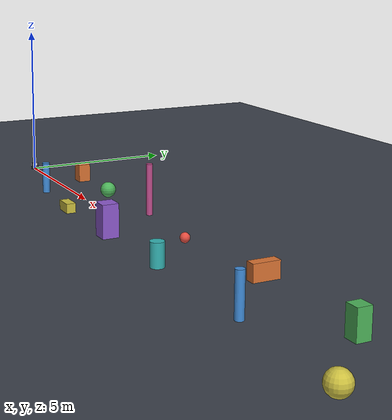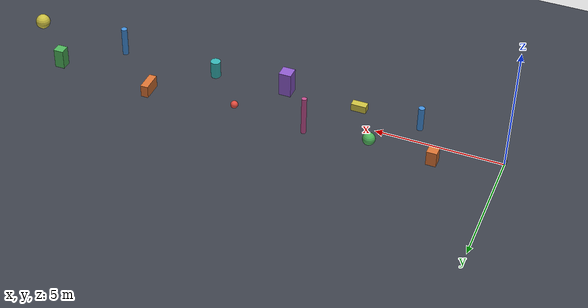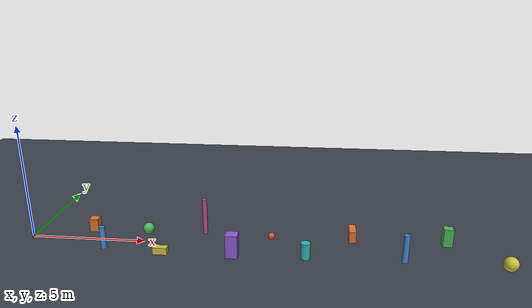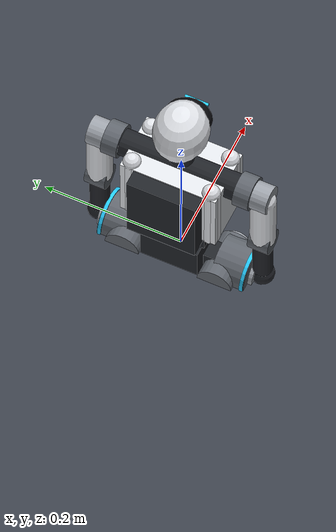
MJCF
<mujoco model="biped_3d">

  <compiler angle="radian" autolimits="true"/>

  <option timestep="0.0005" gravity="0 0 -10" integrator="implicitfast" cone="elliptic"/>

  <default>
    <geom friction="0.8 0.005 0.0001" solref="0.02 1"/>
    <default class="visual">
      <geom mass="0" contype="0" conaffinity="0" group="0"/>
    </default>
    <default class="inertial">
      <geom contype="0" conaffinity="0" group="3" rgba="0.5 0.5 0.5 0.4"/>
    </default>
    <!-- Both legs are identical; anything shared between them lives here so
         the pair can never drift out of sync through a one-sided edit. -->
    <default class="leg">
      <joint type="hinge" axis="0 -1 0" pos="0 0 0"/>
      <geom type="capsule" contype="0" conaffinity="0" group="3" rgba="0.5 0.5 0.5 0.4"/>
      <default class="hip_yaw">
        <joint axis="0 0 1" range="-0.6 0.6" damping="0.2" armature="2e-4"/>
      </default>
      <default class="hip_roll">
        <joint axis="1 0 0" range="-0.6 0.6" damping="0.2"/>
      </default>
      <default class="ankle_pitch">
        <joint range="-1.2 1.2" damping="0.02" armature="2e-4"/>
      </default>
      <default class="ankle_roll">
        <joint axis="1 0 0" range="-0.6 0.6" damping="0.02" armature="2e-4"/>
      </default>
    </default>
    <default class="arm">
      <joint type="hinge" pos="0 0 0" damping="0.01" armature="2e-4"/>
      <default class="shoulder_pitch">
        <joint axis="0 -1 0" range="-1.2 1.2"/>
      </default>
      <default class="shoulder_roll">
        <joint range="-0.2 1.0"/>
      </default>
      <default class="elbow">
        <joint axis="0 -1 0" range="0 2.2"/>
      </default>
    </default>
    <default class="sole">
      <geom type="sphere" size="0.004" mass="0" material="foot_mat" group="3"/>
    </default>
  </default>

  <visual>
    <global offwidth="1280" offheight="720"/>
    <headlight ambient="0.4 0.4 0.4" diffuse="0.6 0.6 0.6" specular="0.1 0.1 0.1"/>
    <!-- shadowclip is a fraction of the model extent (12 m, set by the
         floor): 0.12 keeps the shadow map to ~1.5 m around the robot. -->
    <map znear="0.01" zfar="40" force="0.01" shadowclip="0.12"/>
    <scale forcewidth="0.12" contactwidth="0.08" contactheight="0.01"/>
    <rgba contactforce="0.9 0.15 0.15 1"/>
    <quality shadowsize="4096"/>
  </visual>

  <asset>
    <texture name="skybox" type="skybox" builtin="gradient"
             rgb1="0.35 0.45 0.6" rgb2="0.08 0.1 0.15" width="256" height="256"/>
    <texture name="grid_tex" type="2d" builtin="checker" mark="edge" markrgb="0.8 0.8 0.8"
             rgb1="0.26 0.28 0.32" rgb2="0.20 0.22 0.26" width="300" height="300"/>
    <material name="grid" texture="grid_tex" texrepeat="4 4" texuniform="true" reflectance="0.15"/>
    <!-- Palette in the style of current commercial humanoids (Unitree H1/G1
         and similar): pale glossy shells over a graphite frame, machined
         grey motor housings, and a cyan LED accent. -->
    <material name="shell_mat" rgba="0.88 0.89 0.91 1" specular="0.7" shininess="0.85" reflectance="0.05"/>
    <material name="frame_mat" rgba="0.13 0.14 0.16 1" specular="0.4" shininess="0.5"/>
    <material name="motor_mat" rgba="0.38 0.40 0.43 1" specular="0.9" shininess="0.9"/>
    <material name="cap_mat" rgba="0.62 0.64 0.67 1" specular="1" shininess="1"/>
    <material name="visor_mat" rgba="0.03 0.03 0.04 1" specular="1" shininess="1" reflectance="0.3"/>
    <material name="led_mat" rgba="0.15 0.8 1 1" emission="1"/>
    <material name="foot_mat" rgba="0.08 0.08 0.09 1" specular="0.3" shininess="0.4"/>
    <material name="sole_mat" rgba="0.18 0.19 0.21 1" specular="0.1" shininess="0.2"/>
  </asset>

  <worldbody>
    <!-- Square now that the robot can walk sideways and turn. -->
    <geom name="floor" type="plane" size="60 60 0.1" material="grid"/>

    <geom class="visual" name="prop_box_1" type="box" size="0.2 0.2 0.3"
          pos="2.5 0.9 0.3" rgba="0.85 0.45 0.2 1"/>
    <geom class="visual" name="prop_cyl_1" type="cylinder" size="0.12 0.5"
          pos="3.5 -0.8 0.5" rgba="0.25 0.55 0.85 1"/>
    <geom class="visual" name="prop_sph_1" type="sphere" size="0.25"
          pos="5 0.8 0.25" rgba="0.3 0.7 0.35 1"/>
    <geom class="visual" name="prop_box_2" type="box" size="0.3 0.15 0.15"
          pos="6 -1 0.15" rgba="0.8 0.75 0.25 1"/>
    <geom class="visual" name="prop_cyl_2" type="cylinder" size="0.1 0.8"
          pos="7.5 1.1 0.8" rgba="0.75 0.3 0.55 1"/>
    <geom class="visual" name="prop_box_3" type="box" size="0.25 0.25 0.5"
          pos="9 -0.95 0.5" rgba="0.55 0.35 0.8 1"/>
    <geom class="visual" name="prop_sph_2" type="sphere" size="0.15"
          pos="10.5 0.75 0.15" rgba="0.9 0.3 0.25 1"/>
    <geom class="visual" name="prop_cyl_3" type="cylinder" size="0.2 0.35"
          pos="12 -0.85 0.35" rgba="0.2 0.7 0.7 1"/>
    <geom class="visual" name="prop_box_4" type="box" size="0.15 0.4 0.25"
          pos="14 1.1 0.25" rgba="0.85 0.45 0.2 1"/>
    <geom class="visual" name="prop_cyl_4" type="cylinder" size="0.12 0.6"
          pos="16 -0.8 0.6" rgba="0.25 0.55 0.85 1"/>
    <geom class="visual" name="prop_box_5" type="box" size="0.2 0.2 0.4"
          pos="18 0.9 0.4" rgba="0.3 0.7 0.35 1"/>
    <geom class="visual" name="prop_sph_3" type="sphere" size="0.3"
          pos="20 -1.1 0.3" rgba="0.8 0.75 0.25 1"/>

    <body name="torso" pos="0 0 0">
      <freejoint name="root"/>
      <!-- 0.78 kg here plus 0.18 in the head and 2 x 0.05 in the arms: the
           arms' mass was part of this box before they had joints, so the
           robot still weighs 1.31 kg. -->
      <geom class="inertial" name="torso_geom" type="box" size="0.05 0.06 0.101"
            pos="0 0 0.101" mass="0.78"/>
      <geom class="inertial" name="head" type="sphere" size="0.05"
            pos="0.005 0 0.277" mass="0.18"/>

      <!-- Everything drawn from here on is cosmetic: massless and
           non-colliding (class "visual"), so the styling costs the dynamics
           nothing. -->
      <!-- pelvis: graphite housing, brackets out to the hip-roll motors -->
      <geom class="visual" name="pelvis" type="box" size="0.038 0.042 0.03"
            pos="0 0 0.018" material="frame_mat"/>
      <geom class="visual" name="pelvis_plate" type="box" size="0.004 0.034 0.02"
            pos="0.039 0 0.02" material="shell_mat"/>
      <geom class="visual" name="hip_bracket_l" type="box" size="0.014 0.016 0.016"
            pos="-0.006 0.05 0.008" material="frame_mat"/>
      <geom class="visual" name="hip_bracket_r" type="box" size="0.014 0.016 0.016"
            pos="-0.006 -0.05 0.008" material="frame_mat"/>
      <!-- hip-roll motors: their stators are fixed to the pelvis, so they
           live here rather than on the thigh, drawn on the roll axis -->
      <geom class="visual" name="hip_roll_l_motor" type="cylinder"
            fromto="-0.042 0.068 0 0.03 0.068 0" size="0.025" material="motor_mat"/>
      <geom class="visual" name="hip_roll_l_cap" type="cylinder"
            fromto="0.03 0.068 0 0.037 0.068 0" size="0.017" material="cap_mat"/>
      <geom class="visual" name="hip_roll_r_motor" type="cylinder"
            fromto="-0.042 -0.068 0 0.03 -0.068 0" size="0.025" material="motor_mat"/>
      <geom class="visual" name="hip_roll_r_cap" type="cylinder"
            fromto="0.03 -0.068 0 0.037 -0.068 0" size="0.017" material="cap_mat"/>
      <!-- waist with an LED ring -->
      <geom class="visual" name="waist" type="cylinder"
            fromto="0 0 0.04 0 0 0.08" size="0.03" material="frame_mat"/>
      <geom class="visual" name="waist_led" type="cylinder"
            fromto="0 0 0.056 0 0 0.062" size="0.0315" material="led_mat"/>
      <!-- chest: a box shell whose four vertical edges are rounded off by
           capsules, tapering into a narrower lower torso, over a graphite
           back pack (battery) -->
      <geom class="visual" name="chest" type="box" size="0.042 0.07 0.052"
            pos="0 0 0.15" material="shell_mat"/>
      <geom class="visual" name="chest_edge_fl" type="capsule"
            fromto="0.03 0.058 0.1 0.03 0.058 0.2" size="0.013" material="shell_mat"/>
      <geom class="visual" name="chest_edge_fr" type="capsule"
            fromto="0.03 -0.058 0.1 0.03 -0.058 0.2" size="0.013" material="shell_mat"/>
      <geom class="visual" name="chest_edge_bl" type="capsule"
            fromto="-0.03 0.058 0.1 -0.03 0.058 0.2" size="0.013" material="shell_mat"/>
      <geom class="visual" name="chest_edge_br" type="capsule"
            fromto="-0.03 -0.058 0.1 -0.03 -0.058 0.2" size="0.013" material="shell_mat"/>
      <geom class="visual" name="abdomen" type="box" size="0.034 0.05 0.025"
            pos="0 0 0.09" material="frame_mat"/>
      <geom class="visual" name="backpack" type="box" size="0.018 0.05 0.055"
            pos="-0.046 0 0.145" material="frame_mat"/>
      <geom class="visual" name="chest_led" type="box" size="0.002 0.034 0.0035"
            pos="0.0425 0 0.175" material="led_mat"/>
      <!-- shoulder yoke and the shoulder-pitch motors, whose stators are
           fixed to the trunk; the arms themselves are jointed bodies below
           the legs -->
      <geom class="visual" name="shoulder_yoke" type="capsule"
            fromto="0 -0.085 0.19 0 0.085 0.19" size="0.019" material="frame_mat"/>
      <geom class="visual" name="shoulder_l" type="cylinder"
            fromto="0 0.085 0.19 0 0.108 0.19" size="0.024" material="motor_mat"/>
      <geom class="visual" name="shoulder_r" type="cylinder"
            fromto="0 -0.085 0.19 0 -0.108 0.19" size="0.024" material="motor_mat"/>
      <!-- neck and head. The black visor with its LED bar faces forward, so
           pitch and heading stay readable at a glance. -->
      <geom class="visual" name="neck" type="cylinder"
            fromto="0 0 0.21 0 0 0.24" size="0.018" material="frame_mat"/>
      <geom class="visual" name="head_shell" type="ellipsoid" size="0.043 0.038 0.042"
            pos="0 0 0.272" material="shell_mat"/>
      <geom class="visual" name="visor" type="ellipsoid" size="0.026 0.033 0.022"
            pos="0.023 0 0.276" material="visor_mat"/>
      <geom class="visual" name="visor_led" type="box" size="0.002 0.017 0.0025"
            pos="0.0475 0 0.279" material="led_mat"/>
      <geom class="visual" name="head_cam_lens" type="cylinder"
            fromto="0.038 0 0.266 0.049 0 0.266" size="0.009" material="motor_mat"/>
      <geom class="visual" name="head_cam_glass" type="cylinder"
            fromto="0.049 0 0.266 0.0495 0 0.266" size="0.006" material="visor_mat"/>
      <camera name="head_cam" pos="0.0525 0 0.266" xyaxes="0 -1 0 0.342 0 0.940"
              fovy="58"/>
      <light name="key" mode="trackcom" pos="0 -2 4" dir="0 0.4 -1" directional="true"
             diffuse="0.7 0.7 0.7" specular="0.3 0.3 0.3" castshadow="true"/>
      <light name="fill" mode="trackcom" pos="0 3 3" dir="0 -1 -1" directional="true"
             diffuse="0.25 0.25 0.3" castshadow="false"/>
      <camera name="track" mode="trackcom" pos="0 -2.1 0.15" xyaxes="1 0 0 0 0.25 1"/>
      <camera name="chase" mode="trackcom" pos="-1.3 -1.3 0.7"
              xyaxes="0.707 -0.707 0 0.25 0.25 0.935"/>

      <!-- ===================== left leg ===================== -->
      <body name="thigh_l" pos="0 0.068 0">
        <joint class="hip_yaw" name="hip_yaw_l"/>
        <joint class="hip_roll" name="hip_roll_l"/>
        <joint class="leg" name="hip_l" damping="0.2"/>
        <!-- hip-pitch motor on its hinge axis, pushed outboard so it clears
             the hip-roll motor it crosses; LED ring on the rim -->
        <geom class="visual" name="hip_l_motor" type="cylinder"
              fromto="0 -0.008 0 0 0.04 0" size="0.035" material="motor_mat"/>
        <geom class="visual" name="hip_l_led" type="cylinder"
              fromto="0 0.034 0 0 0.039 0" size="0.0365" material="led_mat"/>
        <geom class="visual" name="hip_l_cap" type="cylinder"
              fromto="0 0.04 0 0 0.046 0" size="0.022" material="cap_mat"/>
        <!-- thigh: graphite spar under a rounded shell -->
        <geom class="visual" name="thigh_l_spar" type="capsule"
              fromto="0 0 0 0 0 -0.17" size="0.017" material="frame_mat"/>
        <geom class="visual" name="thigh_l_shell" type="ellipsoid"
              size="0.031 0.027 0.07" pos="0.004 0 -0.085" material="shell_mat"/>
        <!-- carries the thigh's mass: size and mass fixed, not drawn -->
        <geom class="leg" name="thigh_l_visual" fromto="0 0 0 0 0 -0.17"
              size="0.022" mass="0.07"/>

        <body name="shin_l" pos="0 0 -0.17">
          <joint class="leg" name="knee_l" range="-2.0 -0.25" limited="true" damping="0.05"/>
          <geom class="visual" name="knee_l_motor" type="cylinder"
                fromto="0 -0.024 0 0 0.024 0" size="0.027" material="motor_mat"/>
          <geom class="visual" name="knee_l_cap" type="cylinder"
                fromto="0 -0.029 0 0 0.029 0" size="0.017" material="cap_mat"/>
          <!-- shin: slim graphite tube with a shell guard on the front -->
          <geom class="visual" name="shin_l_spar" type="capsule"
                fromto="0 0 0 0 0 -0.15" size="0.014" material="frame_mat"/>
          <geom class="visual" name="shin_l_guard" type="ellipsoid"
                size="0.019 0.021 0.058" pos="0.01 0 -0.07" material="shell_mat"/>
          <geom class="visual" name="ankle_l" type="cylinder"
                fromto="0 0 -0.135 0 0 -0.15" size="0.019" material="cap_mat"/>
          <geom class="leg" name="shin_l_visual" fromto="0 0 0 0 0 -0.17"
                size="0.018" mass="0.035"/>

          <body name="foot_l" pos="0 0 -0.17">
            <joint class="ankle_pitch" name="ankle_pitch_l"/>
            <joint class="ankle_roll" name="ankle_roll_l"/>
            <!-- The foot's reference point: the ankle projected onto the
                 sole. The MPC's moment arms, contact wrench and the -J^T w
                 Jacobian are all taken here. -->
            <site name="sole_l" pos="0 0 -0.028" size="0.004" rgba="0.15 0.8 1 1" group="4"/>
            <geom class="inertial" name="foot_l_mass" type="box" size="0.048 0.023 0.006"
                  pos="0.015 0 -0.022" mass="0.02"/>
            <geom class="visual" name="ankle_l_pitch_motor" type="cylinder"
                  fromto="0 -0.018 0 0 0.018 0" size="0.014" material="motor_mat"/>
            <geom class="visual" name="ankle_l_roll_motor" type="cylinder"
                  fromto="-0.02 0 -0.004 0.012 0 -0.004" size="0.011" material="cap_mat"/>
            <geom class="visual" name="foot_l_upper" type="box" size="0.034 0.018 0.006"
                  pos="0.018 0 -0.018" material="shell_mat"/>
            <geom class="visual" name="foot_l_sole" type="box" size="0.05 0.025 0.003"
                  pos="0.015 0 -0.025" material="sole_mat"/>
            <!-- the robot's only colliding geoms: four sole corners per foot -->
            <geom class="sole" name="foot_l_toe_l" pos="0.061 0.021 -0.024"/>
            <geom class="sole" name="foot_l_toe_r" pos="0.061 -0.021 -0.024"/>
            <geom class="sole" name="foot_l_heel_l" pos="-0.031 0.021 -0.024"/>
            <geom class="sole" name="foot_l_heel_r" pos="-0.031 -0.021 -0.024"/>
          </body>
        </body>
      </body>

      <!-- ===================== right leg ====================
           Identical to the left in every respect except the y offset; the
           controller drives the pair symmetrically. -->
      <body name="thigh_r" pos="0 -0.068 0">
        <joint class="hip_yaw" name="hip_yaw_r"/>
        <joint class="hip_roll" name="hip_roll_r"/>
        <joint class="leg" name="hip_r" damping="0.2"/>
        <!-- mirrored: outboard is -y on this side -->
        <geom class="visual" name="hip_r_motor" type="cylinder"
              fromto="0 0.008 0 0 -0.04 0" size="0.035" material="motor_mat"/>
        <geom class="visual" name="hip_r_led" type="cylinder"
              fromto="0 -0.034 0 0 -0.039 0" size="0.0365" material="led_mat"/>
        <geom class="visual" name="hip_r_cap" type="cylinder"
              fromto="0 -0.04 0 0 -0.046 0" size="0.022" material="cap_mat"/>
        <geom class="visual" name="thigh_r_spar" type="capsule"
              fromto="0 0 0 0 0 -0.17" size="0.017" material="frame_mat"/>
        <geom class="visual" name="thigh_r_shell" type="ellipsoid"
              size="0.031 0.027 0.07" pos="0.004 0 -0.085" material="shell_mat"/>
        <geom class="leg" name="thigh_r_visual" fromto="0 0 0 0 0 -0.17"
              size="0.022" mass="0.07"/>

        <body name="shin_r" pos="0 0 -0.17">
          <joint class="leg" name="knee_r" range="-2.0 -0.25" limited="true" damping="0.05"/>
          <geom class="visual" name="knee_r_motor" type="cylinder"
                fromto="0 -0.024 0 0 0.024 0" size="0.027" material="motor_mat"/>
          <geom class="visual" name="knee_r_cap" type="cylinder"
                fromto="0 -0.029 0 0 0.029 0" size="0.017" material="cap_mat"/>
          <geom class="visual" name="shin_r_spar" type="capsule"
                fromto="0 0 0 0 0 -0.15" size="0.014" material="frame_mat"/>
          <geom class="visual" name="shin_r_guard" type="ellipsoid"
                size="0.019 0.021 0.058" pos="0.01 0 -0.07" material="shell_mat"/>
          <geom class="visual" name="ankle_r" type="cylinder"
                fromto="0 0 -0.135 0 0 -0.15" size="0.019" material="cap_mat"/>
          <geom class="leg" name="shin_r_visual" fromto="0 0 0 0 0 -0.17"
                size="0.018" mass="0.035"/>
          <body name="foot_r" pos="0 0 -0.17">
            <joint class="ankle_pitch" name="ankle_pitch_r"/>
            <joint class="ankle_roll" name="ankle_roll_r"/>
            <site name="sole_r" pos="0 0 -0.028" size="0.004" rgba="0.15 0.8 1 1" group="4"/>
            <geom class="inertial" name="foot_r_mass" type="box" size="0.048 0.023 0.006"
                  pos="0.015 0 -0.022" mass="0.02"/>
            <geom class="visual" name="ankle_r_pitch_motor" type="cylinder"
                  fromto="0 0.018 0 0 -0.018 0" size="0.014" material="motor_mat"/>
            <geom class="visual" name="ankle_r_roll_motor" type="cylinder"
                  fromto="-0.02 0 -0.004 0.012 0 -0.004" size="0.011" material="cap_mat"/>
            <geom class="visual" name="foot_r_upper" type="box" size="0.034 0.018 0.006"
                  pos="0.018 0 -0.018" material="shell_mat"/>
            <geom class="visual" name="foot_r_sole" type="box" size="0.05 0.025 0.003"
                  pos="0.015 0 -0.025" material="sole_mat"/>
            <geom class="sole" name="foot_r_toe_l" pos="0.061 0.021 -0.024"/>
            <geom class="sole" name="foot_r_toe_r" pos="0.061 -0.021 -0.024"/>
            <geom class="sole" name="foot_r_heel_l" pos="-0.031 0.021 -0.024"/>
            <geom class="sole" name="foot_r_heel_r" pos="-0.031 -0.021 -0.024"/>
          </body>
        </body>
      </body>

      <body name="upper_arm_l" pos="0 0.12 0.19">
        <joint class="shoulder_pitch" name="shoulder_pitch_l"/>
        <joint class="shoulder_roll" name="shoulder_roll_l" axis="1 0 0"/>
        <geom class="inertial" name="upper_arm_l_mass" type="capsule"
              fromto="0 0 0 0 0 -0.1" size="0.018" mass="0.03"/>
        <geom class="visual" name="shoulder_l_cap" type="cylinder"
              fromto="0 -0.012 0 0 0.012 0" size="0.02" material="cap_mat"/>
        <geom class="visual" name="upper_arm_l" type="capsule"
              fromto="0 0 -0.008 0 0 -0.095" size="0.018" material="shell_mat"/>
        <body name="forearm_l" pos="0 0 -0.1">
          <joint class="elbow" name="elbow_l"/>
          <geom class="inertial" name="forearm_l_mass" type="capsule"
                fromto="0 0 0 0 0 -0.085" size="0.015" mass="0.02"/>
          <geom class="visual" name="elbow_l_motor" type="cylinder"
                fromto="0 -0.015 0 0 0.015 0" size="0.018" material="motor_mat"/>
          <geom class="visual" name="forearm_l" type="capsule"
                fromto="0 0 0 0 0 -0.072" size="0.014" material="frame_mat"/>
          <geom class="visual" name="hand_l" type="sphere" size="0.017"
                pos="0 0 -0.085" material="frame_mat"/>
        </body>
      </body>
      <body name="upper_arm_r" pos="0 -0.12 0.19">
        <joint class="shoulder_pitch" name="shoulder_pitch_r"/>
        <joint class="shoulder_roll" name="shoulder_roll_r" axis="-1 0 0"/>
        <geom class="inertial" name="upper_arm_r_mass" type="capsule"
              fromto="0 0 0 0 0 -0.1" size="0.018" mass="0.03"/>
        <geom class="visual" name="shoulder_r_cap" type="cylinder"
              fromto="0 0.012 0 0 -0.012 0" size="0.02" material="cap_mat"/>
        <geom class="visual" name="upper_arm_r" type="capsule"
              fromto="0 0 -0.008 0 0 -0.095" size="0.018" material="shell_mat"/>
        <body name="forearm_r" pos="0 0 -0.1">
          <joint class="elbow" name="elbow_r"/>
          <geom class="inertial" name="forearm_r_mass" type="capsule"
                fromto="0 0 0 0 0 -0.085" size="0.015" mass="0.02"/>
          <geom class="visual" name="elbow_r_motor" type="cylinder"
                fromto="0 -0.015 0 0 0.015 0" size="0.018" material="motor_mat"/>
          <geom class="visual" name="forearm_r" type="capsule"
                fromto="0 0 0 0 0 -0.072" size="0.014" material="frame_mat"/>
          <geom class="visual" name="hand_r" type="sphere" size="0.017"
                pos="0 0 -0.085" material="frame_mat"/>
        </body>
      </body>
    </body>
  </worldbody>

  <actuator>
    <motor name="hip_yaw_l_torque" joint="hip_yaw_l" gear="1" ctrlrange="-20 20"/>
    <motor name="hip_roll_l_torque" joint="hip_roll_l" gear="1" ctrlrange="-200 200"/>
    <motor name="hip_l_torque" joint="hip_l" gear="1" ctrlrange="-200 200"/>
    <motor name="knee_l_torque" joint="knee_l" gear="1" ctrlrange="-100 100"/>
    <motor name="ankle_pitch_l_torque" joint="ankle_pitch_l" gear="1" ctrlrange="-20 20"/>
    <motor name="ankle_roll_l_torque" joint="ankle_roll_l" gear="1" ctrlrange="-20 20"/>
    <motor name="hip_yaw_r_torque" joint="hip_yaw_r" gear="1" ctrlrange="-20 20"/>
    <motor name="hip_roll_r_torque" joint="hip_roll_r" gear="1" ctrlrange="-200 200"/>
    <motor name="hip_r_torque" joint="hip_r" gear="1" ctrlrange="-200 200"/>
    <motor name="knee_r_torque" joint="knee_r" gear="1" ctrlrange="-100 100"/>
    <motor name="ankle_pitch_r_torque" joint="ankle_pitch_r" gear="1" ctrlrange="-20 20"/>
    <motor name="ankle_roll_r_torque" joint="ankle_roll_r" gear="1" ctrlrange="-20 20"/>
    <motor name="shoulder_pitch_l_torque" joint="shoulder_pitch_l" gear="1" ctrlrange="-5 5"/>
    <motor name="shoulder_roll_l_torque" joint="shoulder_roll_l" gear="1" ctrlrange="-5 5"/>
    <motor name="elbow_l_torque" joint="elbow_l" gear="1" ctrlrange="-5 5"/>
    <motor name="shoulder_pitch_r_torque" joint="shoulder_pitch_r" gear="1" ctrlrange="-5 5"/>
    <motor name="shoulder_roll_r_torque" joint="shoulder_roll_r" gear="1" ctrlrange="-5 5"/>
    <motor name="elbow_r_torque" joint="elbow_r" gear="1" ctrlrange="-5 5"/>
  </actuator>

  <keyframe>
    <key name="mpc_stand"
         qpos="0 0 0.2757 1 0 0 0  0 0 0.7548 -1.5096 0.7548 0  0 0 0.7548 -1.5096 0.7548 0
              0 0.12 0.5  0 0.12 0.5"/>
  </keyframe>
</mujoco>
